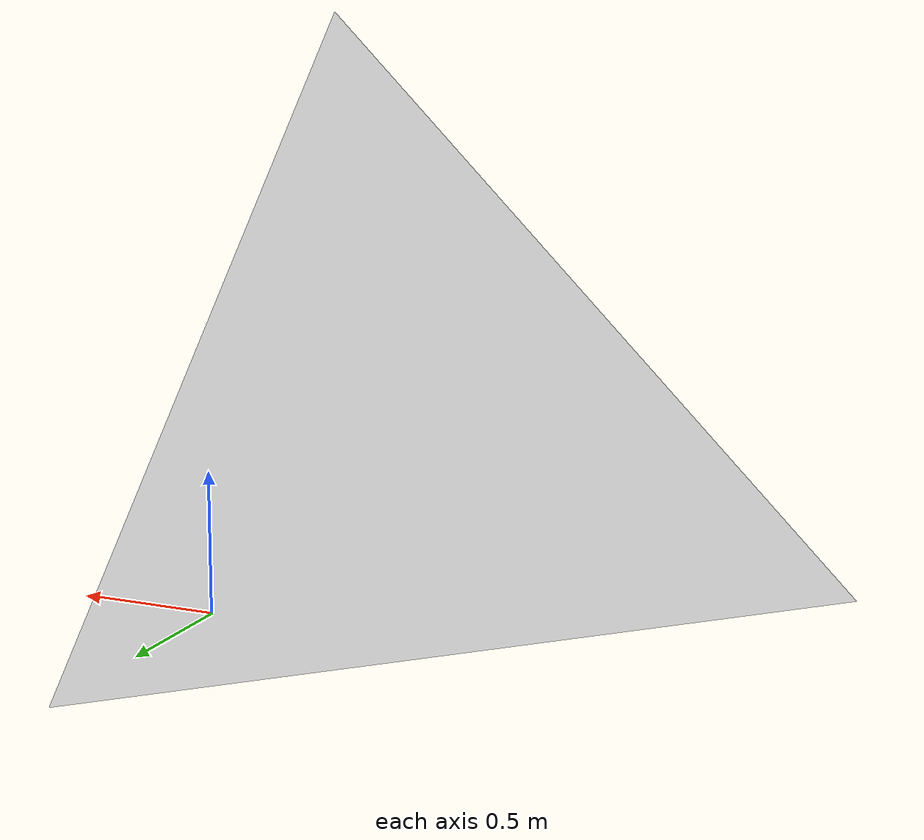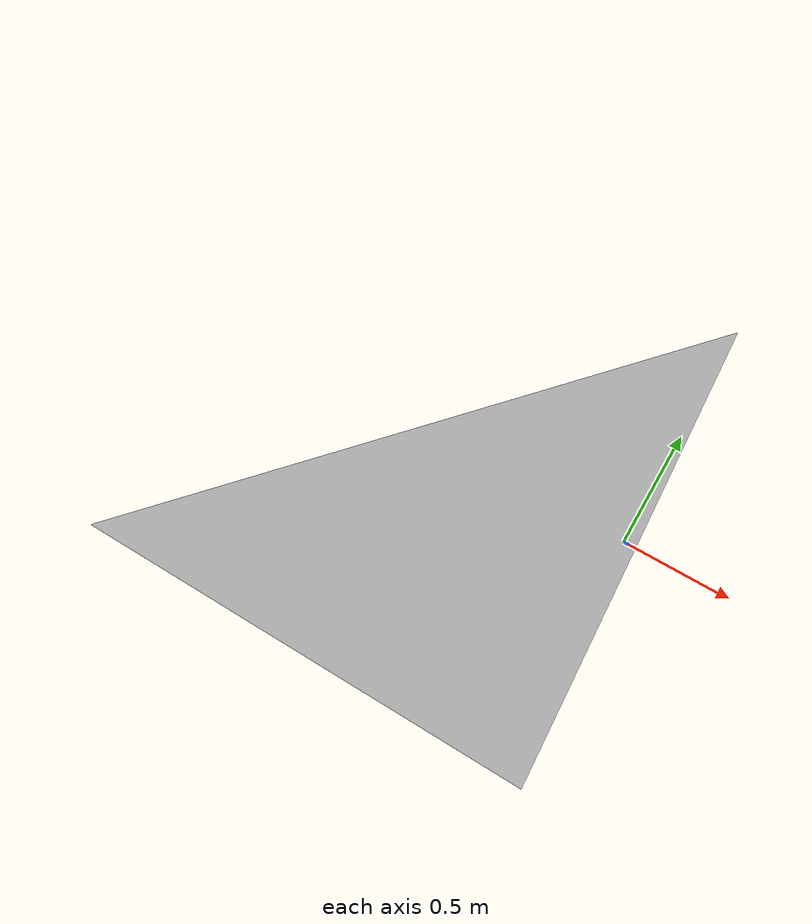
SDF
<?xml version="1.0" ?>
<sdf version="1.4">
  <model name="tetra">
    <pose>0 0 0 0 0 0</pose>
    <link name="tetra">
      <pose>0 0 0 0 0 0</pose>
        <inertial>
          <mass>5.</mass>
          <!-- These values are set using inertia matrix values for a box
               with size 0.05 and mass 5.0, keeping in mind that the geometry
               is that of a tetrahedron. -->
          <inertia>
            <ixx>.005</ixx>
            <ixy>0</ixy>
            <ixz>0</ixz>
            <iyy>.005</iyy>
            <iyz>0</iyz>
            <izz>.005</izz>
        </inertia>
        </inertial>
      <visual name="tetra">
        <pose>0 0 0 0 0 0</pose>
        <geometry>
          <mesh>
            <uri>tetrahedron.obj</uri>
          </mesh>
        </geometry>
        <material/>
      </visual>
      <collision name="tetra">
        <geometry>
          <mesh>
            <uri>tetrahedron.obj</uri>
          </mesh>
        </geometry>
      </collision>
    </link>
  </model>
</sdf>
